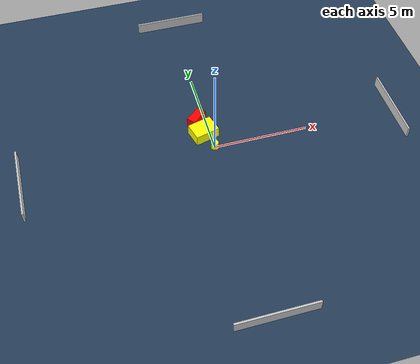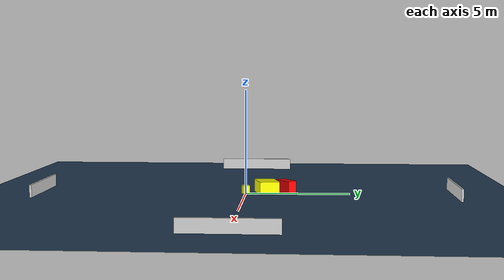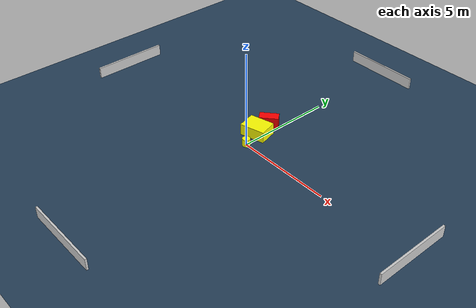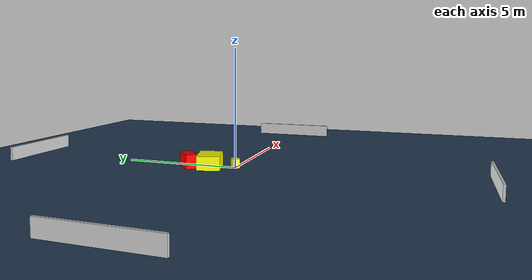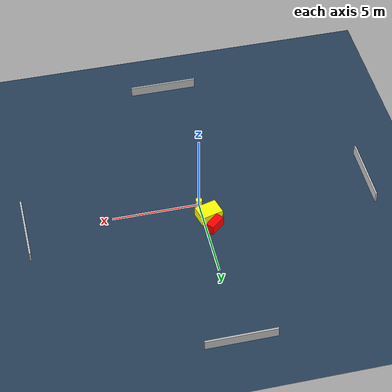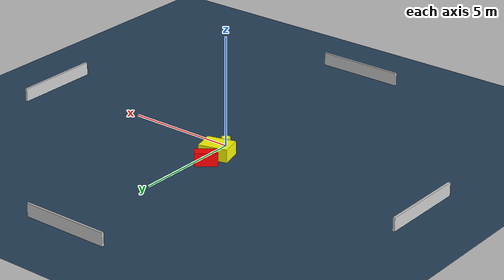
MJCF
<?xml version="1.0" ?>
<mujoco model="generated_environment">
  <option timestep="0.01" integrator="RK4" cone="elliptic"/>
  <default>
    <geom density="1"/>
  </default>
  <asset>
    <texture builtin="gradient" height="3072" name="skybox" rgb1="0.3 0.5 0.7" rgb2="0 0 0" type="skybox" width="512"/>
    <texture builtin="checker" height="300" name="groundplane" rgb1="0.2 0.3 0.4" rgb2="0.1 0.2 0.3" type="2d" width="300"/>
    <material name="groundplane" reflectance="0.2" texrepeat="5 5" texture="groundplane"/>
  </asset>
  <worldbody>
    <light dir="0 0 -1" directional="true" pos="0 0 1.5"/>
    <geom condim="3" friction="0.5 0.005 0.001" material="groundplane" name="floor" pos="0 0 0" size="0 0 0.05" type="plane"/>
    <body name="walls">
      <geom name="wall_1" condim="4" pos="-10.0 0.0 0.3" rgba="0.800000011920929 0.800000011920929 0.800000011920929 1.0" size="0.05 2.0 0.3" type="box"/>
      <geom name="wall_2" condim="4" pos="10.0 0.0 0.3" rgba="0.800000011920929 0.800000011920929 0.800000011920929 1.0" size="0.05 2.0 0.3" type="box"/>
      <geom name="wall_3" condim="4" pos="0.0 -10.0 0.3" rgba="0.800000011920929 0.800000011920929 0.800000011920929 1.0" size="2.0 0.05 0.3" type="box"/>
      <geom name="wall_4" condim="4" pos="0.0 10.0 0.3" rgba="0.800000011920929 0.800000011920929 0.800000011920929 1.0" size="2.0 0.05 0.3" type="box"/>
    </body>
    <body name="robot">
      <joint name="joint_x" type="slide" pos="0 0 0" axis="1 0 0"/>
      <joint name="joint_y" type="slide" pos="0 0 0" axis="0 1 0"/>
      <geom name="robot" type="cylinder" pos="0.0 0.0 0.2" size="0.2 0.2 0.0" mass="5.0" friction="1.0 0.005 0.0001" condim="4" rgba="1.0 1.0 0.0 1.0"/>
    </body>
    <body name="obstacle_1_movable">
      <geom name="obstacle_1_movable" condim="4" pos="-0.3396189427482758 1.0117444914913891 0.3" euler="0 0 194.92545027668007" friction="0.0 0.005 0.001" rgba="1.0 1.0 0.0 1.0" size="0.6552600096996448 0.48741481660463454 0.3" type="box" mass="0.1"/>
      <joint type="free"/>
    </body>
    <body name="obstacle_2_static">
      <geom name="obstacle_2_static" condim="4" pos="-0.48322519778393114 1.9331992402472349 0.3" euler="0 0 40.64111221980551" friction="0.0 0.005 0.001" rgba="1.0 0.0 0.0 1.0" size="0.4935027084645955 0.24574489785458403 0.3" type="box"/>
    </body>
  </worldbody>
  <actuator>
    <motor name="actuator_x" joint="joint_x" gear="1" ctrlrange="-1 1"/>
    <motor name="actuator_y" joint="joint_y" gear="1" ctrlrange="-1 1"/>
  </actuator>
</mujoco>
